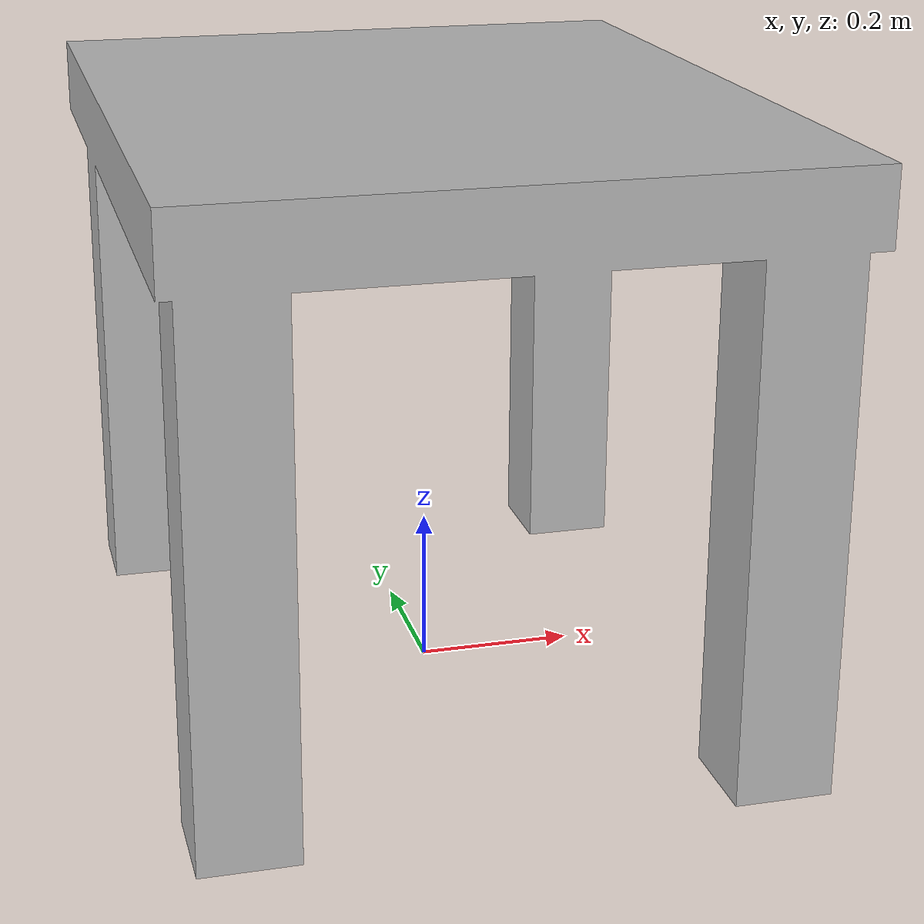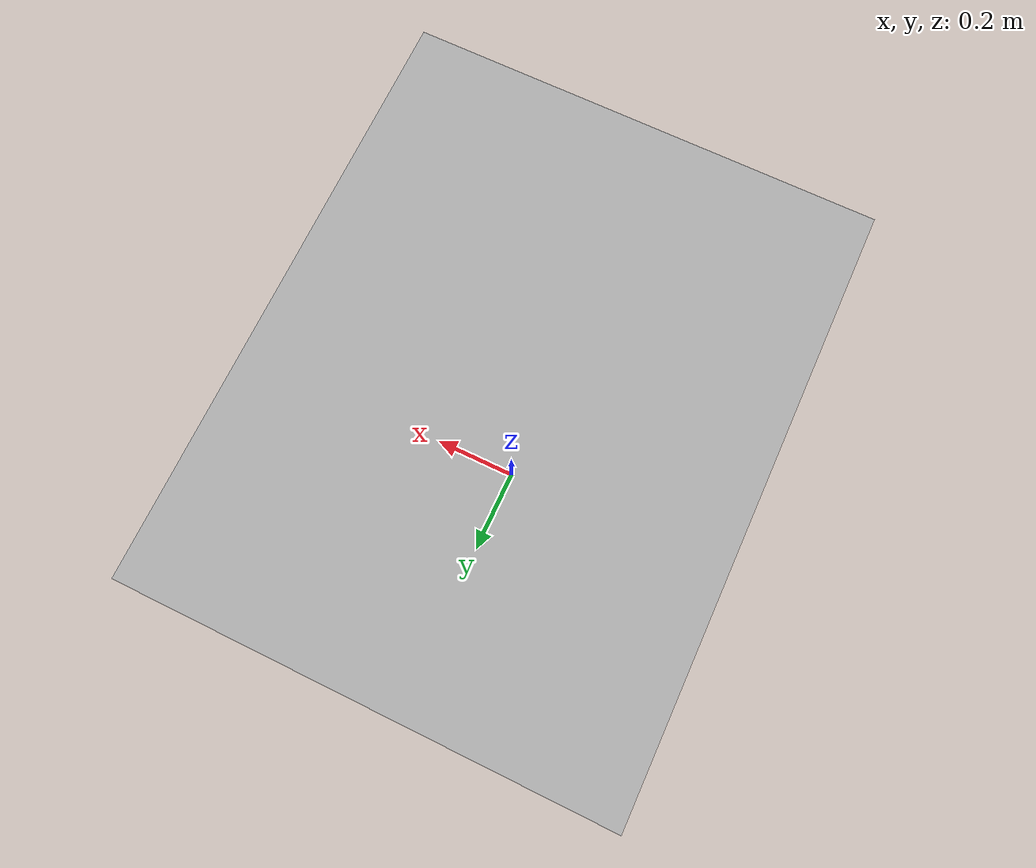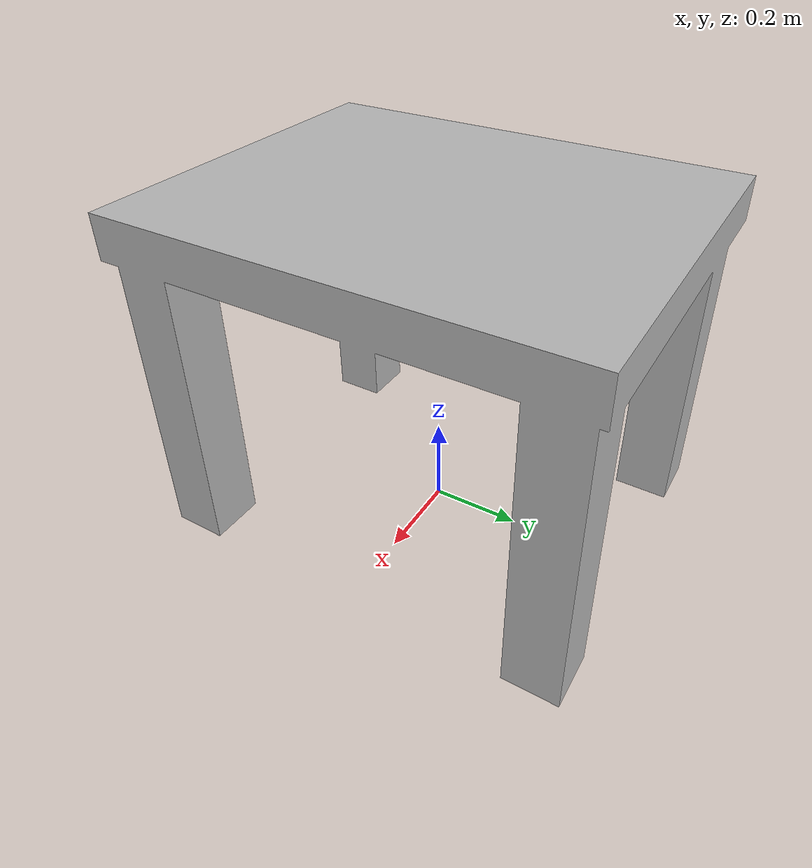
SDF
<?xml version="1.0" ?>
<sdf version='1.6'>
  <model name="rubish_table">
      <static>0</static>
      <link name='link'>
        <inertial>
          <pose>0.000000 0.000000 0.0 0.000000 0.000000 0.000000</pose>
          <mass>2.0</mass>
          <inertia>
            <ixx>1.1721666666666666</ixx>
            <ixy>0.000000</ixy>
            <ixz>0.000000</ixz>
            <iyy>0.7348333333333332</iyy>
            <iyz>0.000000</iyz>
            <izz>0.9093666666666664</izz>
          </inertia>
        </inertial>
        <collision name='collision'>
          <geometry>
            <mesh>
              <uri>model://rubish_table/meshes/rubish_table.dae</uri>
              <scale>1 1 1</scale>
            </mesh>
          </geometry>
          <max_contacts>4</max_contacts>
          <surface>
            <friction>
              <ode>
                <mu>30.0</mu>
                <mu2>30.0</mu2>
              </ode>
            </friction>
            <contact>
              <ode>
                <kp>1000000.0</kp>
                <kd>100.0</kd>
                <max_vel>1.0</max_vel>
                <min_depth>0.002</min_depth>
              </ode>
            </contact>
          </surface>
        </collision>
        <visual name='visual'>
          <geometry>
            <mesh>
              <uri>model://rubish_table/meshes/rubish_table.dae</uri>
              <scale>1 1 1</scale>
            </mesh>
          </geometry>

        </visual>
        <velocity_decay>
          <linear>0.000000</linear>
          <angular>0.000000</angular>
        </velocity_decay>
        <self_collide>0</self_collide>
        <kinematic>0</kinematic>
        <gravity>1</gravity>
      </link>
  </model>
</sdf>
